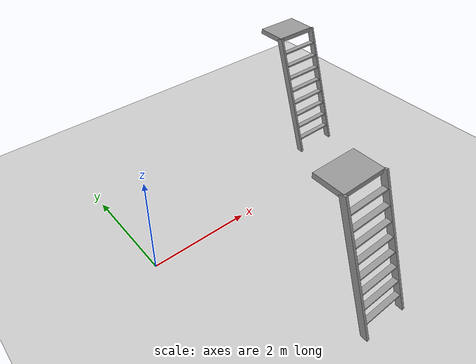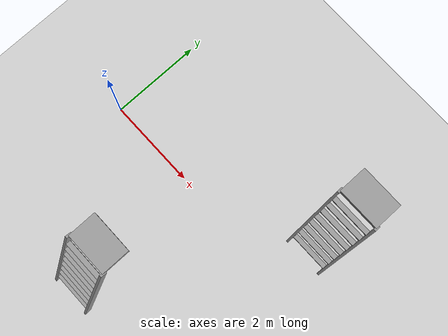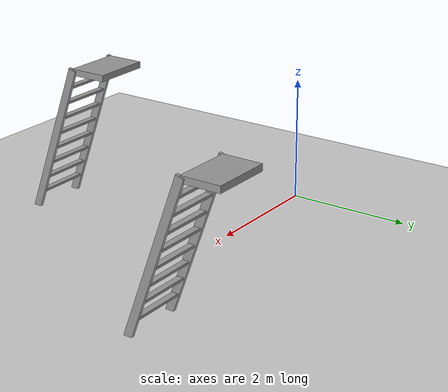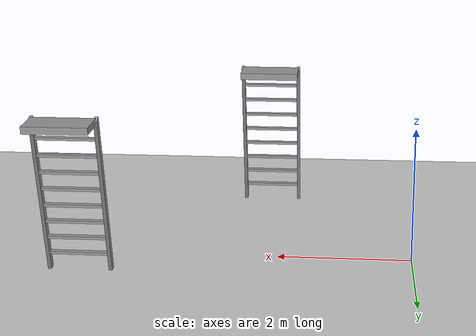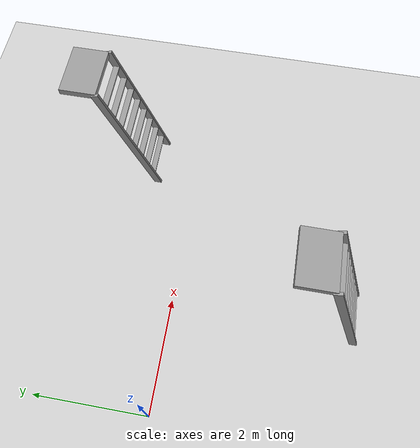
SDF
<sdf version="1.7">
 <world name="default">
  <light name="sun" type="directional">
   <pose>0 0 10 0 -0 0</pose>
   <diffuse>0.8 0.8 0.8 1</diffuse>
   <specular>0.2 0.2 0.2 1</specular>
   <attenuation>
    <range>1000</range>
    <constant>0.9</constant>
    <linear>0.01</linear>
    <quadratic>0.001</quadratic>
   </attenuation>
   <direction>-0.5 0.1 -0.9</direction>
   <spot><inner_angle>0</inner_angle><outer_angle>0</outer_angle><falloff>0</falloff></spot>
  </light>
  <model name="ground_plane">
   <static>1</static>
   <link name="link">
    <collision name="collision">
     <geometry><plane><normal>0 0 1</normal><size>100 100</size></plane></geometry>
     <surface>
      <contact><collide_bitmask>65535</collide_bitmask></contact>
      <friction><ode><mu>100</mu><mu2>50</mu2></ode></friction>
     </surface>
    </collision>
    <visual name="visual">
     <cast_shadows>0</cast_shadows>
     <geometry><plane><normal>0 0 1</normal><size>100 100</size></plane></geometry>
     <material>
      <script><uri>file://media/materials/scripts/gazebo.material</uri><name>Gazebo/Grey</name></script>
     </material>
    </visual>
   </link>
  </model>
  <gravity>0 0 -9.8</gravity>
  <magnetic_field>6e-06 2.3e-05 -4.2e-05</magnetic_field>
  <atmosphere type="adiabatic"/>
  <physics type="ode">
   <max_step_size>0.001</max_step_size>
   <real_time_factor>1</real_time_factor>
   <real_time_update_rate>1000</real_time_update_rate>
  </physics>
  <scene><ambient>0.4 0.4 0.4 1</ambient><background>0.7 0.7 0.7 1</background><shadows>1</shadows></scene>
  <spherical_coordinates>
   <surface_model>EARTH_WGS84</surface_model>
   <latitude_deg>0</latitude_deg>
   <longitude_deg>0</longitude_deg>
   <elevation>0</elevation>
   <heading_deg>0</heading_deg>
  </spherical_coordinates>
  <model name="ladder_70deg_0rails">
   <static>1</static>
   <link name="step0">
    <pose>0 0.097059 0.266667 0 -0 0</pose>
    <inertial>
     <mass>9.75482</mass>
     <inertia>
      <ixx>0.00957124</ixx>
      <iyy>0.65963</iyy>
      <izz>0.666842</izz>
      <ixy>0</ixy>
      <ixz>0</ixz>
      <iyz>0</iyz>
     </inertia>
    </inertial>
    <collision name="collision"><geometry><box><size>0.9 0.1016 0.0381</size></box></geometry></collision>
    <visual name="visual">
     <geometry><box><size>0.9 0.1016 0.0381</size></box></geometry>
     <material>
      <script><uri>file://media/materials/scripts/gazebo.material</uri><name>Gazebo/Grey</name></script>
     </material>
    </visual>
   </link>
   <link name="step1">
    <pose>0 0.194117 0.533333 0 -0 0</pose>
    <inertial>
     <mass>9.75482</mass>
     <inertia>
      <ixx>0.00957124</ixx>
      <iyy>0.65963</iyy>
      <izz>0.666842</izz>
      <ixy>0</ixy>
      <ixz>0</ixz>
      <iyz>0</iyz>
     </inertia>
    </inertial>
    <collision name="collision"><geometry><box><size>0.9 0.1016 0.0381</size></box></geometry></collision>
    <visual name="visual">
     <geometry><box><size>0.9 0.1016 0.0381</size></box></geometry>
     <material>
      <script><uri>file://media/materials/scripts/gazebo.material</uri><name>Gazebo/Grey</name></script>
     </material>
    </visual>
   </link>
   <link name="step2">
    <pose>0 0.291176 0.8 0 -0 0</pose>
    <inertial>
     <mass>9.75482</mass>
     <inertia>
      <ixx>0.00957124</ixx>
      <iyy>0.65963</iyy>
      <izz>0.666842</izz>
      <ixy>0</ixy>
      <ixz>0</ixz>
      <iyz>0</iyz>
     </inertia>
    </inertial>
    <collision name="collision"><geometry><box><size>0.9 0.1016 0.0381</size></box></geometry></collision>
    <visual name="visual">
     <geometry><box><size>0.9 0.1016 0.0381</size></box></geometry>
     <material>
      <script><uri>file://media/materials/scripts/gazebo.material</uri><name>Gazebo/Grey</name></script>
     </material>
    </visual>
   </link>
   <link name="step3">
    <pose>0 0.388235 1.06667 0 -0 0</pose>
    <inertial>
     <mass>9.75482</mass>
     <inertia>
      <ixx>0.00957124</ixx>
      <iyy>0.65963</iyy>
      <izz>0.666842</izz>
      <ixy>0</ixy>
      <ixz>0</ixz>
      <iyz>0</iyz>
     </inertia>
    </inertial>
    <collision name="collision"><geometry><box><size>0.9 0.1016 0.0381</size></box></geometry></collision>
    <visual name="visual">
     <geometry><box><size>0.9 0.1016 0.0381</size></box></geometry>
     <material>
      <script><uri>file://media/materials/scripts/gazebo.material</uri><name>Gazebo/Grey</name></script>
     </material>
    </visual>
   </link>
   <link name="step4">
    <pose>0 0.485294 1.33333 0 -0 0</pose>
    <inertial>
     <mass>9.75482</mass>
     <inertia>
      <ixx>0.00957124</ixx>
      <iyy>0.65963</iyy>
      <izz>0.666842</izz>
      <ixy>0</ixy>
      <ixz>0</ixz>
      <iyz>0</iyz>
     </inertia>
    </inertial>
    <collision name="collision"><geometry><box><size>0.9 0.1016 0.0381</size></box></geometry></collision>
    <visual name="visual">
     <geometry><box><size>0.9 0.1016 0.0381</size></box></geometry>
     <material>
      <script><uri>file://media/materials/scripts/gazebo.material</uri><name>Gazebo/Grey</name></script>
     </material>
    </visual>
   </link>
   <link name="step5">
    <pose>0 0.582352 1.6 0 -0 0</pose>
    <inertial>
     <mass>9.75482</mass>
     <inertia>
      <ixx>0.00957124</ixx>
      <iyy>0.65963</iyy>
      <izz>0.666842</izz>
      <ixy>0</ixy>
      <ixz>0</ixz>
      <iyz>0</iyz>
     </inertia>
    </inertial>
    <collision name="collision"><geometry><box><size>0.9 0.1016 0.0381</size></box></geometry></collision>
    <visual name="visual">
     <geometry><box><size>0.9 0.1016 0.0381</size></box></geometry>
     <material>
      <script><uri>file://media/materials/scripts/gazebo.material</uri><name>Gazebo/Grey</name></script>
     </material>
    </visual>
   </link>
   <link name="step6">
    <pose>0 0.679411 1.86667 0 -0 0</pose>
    <inertial>
     <mass>9.75482</mass>
     <inertia>
      <ixx>0.00957124</ixx>
      <iyy>0.65963</iyy>
      <izz>0.666842</izz>
      <ixy>0</ixy>
      <ixz>0</ixz>
      <iyz>0</iyz>
     </inertia>
    </inertial>
    <collision name="collision"><geometry><box><size>0.9 0.1016 0.0381</size></box></geometry></collision>
    <visual name="visual">
     <geometry><box><size>0.9 0.1016 0.0381</size></box></geometry>
     <material>
      <script><uri>file://media/materials/scripts/gazebo.material</uri><name>Gazebo/Grey</name></script>
     </material>
    </visual>
   </link>
   <link name="step7">
    <pose>0 0.77647 2.13333 0 -0 0</pose>
    <inertial>
     <mass>9.75482</mass>
     <inertia>
      <ixx>0.00957124</ixx>
      <iyy>0.65963</iyy>
      <izz>0.666842</izz>
      <ixy>0</ixy>
      <ixz>0</ixz>
      <iyz>0</iyz>
     </inertia>
    </inertial>
    <collision name="collision"><geometry><box><size>0.9 0.1016 0.0381</size></box></geometry></collision>
    <visual name="visual">
     <geometry><box><size>0.9 0.1016 0.0381</size></box></geometry>
     <material>
      <script><uri>file://media/materials/scripts/gazebo.material</uri><name>Gazebo/Grey</name></script>
     </material>
    </visual>
   </link>
   <link name="landing">
    <pose>0 1.17353 2.4 0 -0 0</pose>
    <inertial>
     <mass>57.6072</mass>
     <inertia><ixx>1.73518</ixx><iyy>3.89545</iyy><izz>5.6167</izz><ixy>0</ixy><ixz>0</ixz><iyz>0</iyz></inertia>
    </inertial>
    <collision name="collision"><geometry><box><size>0.9 0.6 0.1016</size></box></geometry></collision>
    <visual name="visual">
     <geometry><box><size>0.9 0.6 0.1016</size></box></geometry>
     <material>
      <script><uri>file://media/materials/scripts/gazebo.material</uri><name>Gazebo/Grey</name></script>
     </material>
    </visual>
   </link>
   <link name="left_side_wall">
    <pose>-0.45 0.436764 1.2 1.22173 -0 0</pose>
    <collision name="collision"><geometry><box><size>0.0508 2.63403 0.13</size></box></geometry></collision>
    <visual name="visual">
     <geometry><box><size>0.0508 2.63403 0.13</size></box></geometry>
     <material>
      <script><uri>file://media/materials/scripts/gazebo.material</uri><name>Gazebo/Grey</name></script>
     </material>
    </visual>
   </link>
   <link name="right_side_wall">
    <pose>0.45 0.436764 1.2 1.22173 -0 0</pose>
    <collision name="collision"><geometry><box><size>0.0508 2.63403 0.13</size></box></geometry></collision>
    <visual name="visual">
     <geometry><box><size>0.0508 2.63403 0.13</size></box></geometry>
     <material>
      <script><uri>file://media/materials/scripts/gazebo.material</uri><name>Gazebo/Grey</name></script>
     </material>
    </visual>
   </link>
   <pose>2.25799 -3.2485 0 0 -0 0</pose>
  </model>
  <model name="ladder_70deg_0rails_0">
   <static>1</static>
   <link name="step0">
    <pose>0 0.097059 0.266667 0 -0 0</pose>
    <inertial>
     <mass>9.75482</mass>
     <inertia>
      <ixx>0.00957124</ixx>
      <iyy>0.65963</iyy>
      <izz>0.666842</izz>
      <ixy>0</ixy>
      <ixz>0</ixz>
      <iyz>0</iyz>
     </inertia>
    </inertial>
    <collision name="collision"><geometry><box><size>0.9 0.1016 0.0381</size></box></geometry></collision>
    <visual name="visual">
     <geometry><box><size>0.9 0.1016 0.0381</size></box></geometry>
     <material>
      <script><uri>file://media/materials/scripts/gazebo.material</uri><name>Gazebo/Grey</name></script>
     </material>
    </visual>
   </link>
   <link name="step1">
    <pose>0 0.194117 0.533333 0 -0 0</pose>
    <inertial>
     <mass>9.75482</mass>
     <inertia>
      <ixx>0.00957124</ixx>
      <iyy>0.65963</iyy>
      <izz>0.666842</izz>
      <ixy>0</ixy>
      <ixz>0</ixz>
      <iyz>0</iyz>
     </inertia>
    </inertial>
    <collision name="collision"><geometry><box><size>0.9 0.1016 0.0381</size></box></geometry></collision>
    <visual name="visual">
     <geometry><box><size>0.9 0.1016 0.0381</size></box></geometry>
     <material>
      <script><uri>file://media/materials/scripts/gazebo.material</uri><name>Gazebo/Grey</name></script>
     </material>
    </visual>
   </link>
   <link name="step2">
    <pose>0 0.291176 0.8 0 -0 0</pose>
    <inertial>
     <mass>9.75482</mass>
     <inertia>
      <ixx>0.00957124</ixx>
      <iyy>0.65963</iyy>
      <izz>0.666842</izz>
      <ixy>0</ixy>
      <ixz>0</ixz>
      <iyz>0</iyz>
     </inertia>
    </inertial>
    <collision name="collision"><geometry><box><size>0.9 0.1016 0.0381</size></box></geometry></collision>
    <visual name="visual">
     <geometry><box><size>0.9 0.1016 0.0381</size></box></geometry>
     <material>
      <script><uri>file://media/materials/scripts/gazebo.material</uri><name>Gazebo/Grey</name></script>
     </material>
    </visual>
   </link>
   <link name="step3">
    <pose>0 0.388235 1.06667 0 -0 0</pose>
    <inertial>
     <mass>9.75482</mass>
     <inertia>
      <ixx>0.00957124</ixx>
      <iyy>0.65963</iyy>
      <izz>0.666842</izz>
      <ixy>0</ixy>
      <ixz>0</ixz>
      <iyz>0</iyz>
     </inertia>
    </inertial>
    <collision name="collision"><geometry><box><size>0.9 0.1016 0.0381</size></box></geometry></collision>
    <visual name="visual">
     <geometry><box><size>0.9 0.1016 0.0381</size></box></geometry>
     <material>
      <script><uri>file://media/materials/scripts/gazebo.material</uri><name>Gazebo/Grey</name></script>
     </material>
    </visual>
   </link>
   <link name="step4">
    <pose>0 0.485294 1.33333 0 -0 0</pose>
    <inertial>
     <mass>9.75482</mass>
     <inertia>
      <ixx>0.00957124</ixx>
      <iyy>0.65963</iyy>
      <izz>0.666842</izz>
      <ixy>0</ixy>
      <ixz>0</ixz>
      <iyz>0</iyz>
     </inertia>
    </inertial>
    <collision name="collision"><geometry><box><size>0.9 0.1016 0.0381</size></box></geometry></collision>
    <visual name="visual">
     <geometry><box><size>0.9 0.1016 0.0381</size></box></geometry>
     <material>
      <script><uri>file://media/materials/scripts/gazebo.material</uri><name>Gazebo/Grey</name></script>
     </material>
    </visual>
   </link>
   <link name="step5">
    <pose>0 0.582352 1.6 0 -0 0</pose>
    <inertial>
     <mass>9.75482</mass>
     <inertia>
      <ixx>0.00957124</ixx>
      <iyy>0.65963</iyy>
      <izz>0.666842</izz>
      <ixy>0</ixy>
      <ixz>0</ixz>
      <iyz>0</iyz>
     </inertia>
    </inertial>
    <collision name="collision"><geometry><box><size>0.9 0.1016 0.0381</size></box></geometry></collision>
    <visual name="visual">
     <geometry><box><size>0.9 0.1016 0.0381</size></box></geometry>
     <material>
      <script><uri>file://media/materials/scripts/gazebo.material</uri><name>Gazebo/Grey</name></script>
     </material>
    </visual>
   </link>
   <link name="step6">
    <pose>0 0.679411 1.86667 0 -0 0</pose>
    <inertial>
     <mass>9.75482</mass>
     <inertia>
      <ixx>0.00957124</ixx>
      <iyy>0.65963</iyy>
      <izz>0.666842</izz>
      <ixy>0</ixy>
      <ixz>0</ixz>
      <iyz>0</iyz>
     </inertia>
    </inertial>
    <collision name="collision"><geometry><box><size>0.9 0.1016 0.0381</size></box></geometry></collision>
    <visual name="visual">
     <geometry><box><size>0.9 0.1016 0.0381</size></box></geometry>
     <material>
      <script><uri>file://media/materials/scripts/gazebo.material</uri><name>Gazebo/Grey</name></script>
     </material>
    </visual>
   </link>
   <link name="step7">
    <pose>0 0.77647 2.13333 0 -0 0</pose>
    <inertial>
     <mass>9.75482</mass>
     <inertia>
      <ixx>0.00957124</ixx>
      <iyy>0.65963</iyy>
      <izz>0.666842</izz>
      <ixy>0</ixy>
      <ixz>0</ixz>
      <iyz>0</iyz>
     </inertia>
    </inertial>
    <collision name="collision"><geometry><box><size>0.9 0.1016 0.0381</size></box></geometry></collision>
    <visual name="visual">
     <geometry><box><size>0.9 0.1016 0.0381</size></box></geometry>
     <material>
      <script><uri>file://media/materials/scripts/gazebo.material</uri><name>Gazebo/Grey</name></script>
     </material>
    </visual>
   </link>
   <link name="landing">
    <pose>0 1.17353 2.4 0 -0 0</pose>
    <inertial>
     <mass>57.6072</mass>
     <inertia><ixx>1.73518</ixx><iyy>3.89545</iyy><izz>5.6167</izz><ixy>0</ixy><ixz>0</ixz><iyz>0</iyz></inertia>
    </inertial>
    <collision name="collision"><geometry><box><size>0.9 0.6 0.1016</size></box></geometry></collision>
    <visual name="visual">
     <geometry><box><size>0.9 0.6 0.1016</size></box></geometry>
     <material>
      <script><uri>file://media/materials/scripts/gazebo.material</uri><name>Gazebo/Grey</name></script>
     </material>
    </visual>
   </link>
   <link name="left_side_wall">
    <pose>-0.45 0.436764 1.2 1.22173 -0 0</pose>
    <collision name="collision"><geometry><box><size>0.0508 2.63403 0.13</size></box></geometry></collision>
    <visual name="visual">
     <geometry><box><size>0.0508 2.63403 0.13</size></box></geometry>
     <material>
      <script><uri>file://media/materials/scripts/gazebo.material</uri><name>Gazebo/Grey</name></script>
     </material>
    </visual>
   </link>
   <link name="right_side_wall">
    <pose>0.45 0.436764 1.2 1.22173 -0 0</pose>
    <collision name="collision"><geometry><box><size>0.0508 2.63403 0.13</size></box></geometry></collision>
    <visual name="visual">
     <geometry><box><size>0.0508 2.63403 0.13</size></box></geometry>
     <material>
      <script><uri>file://media/materials/scripts/gazebo.material</uri><name>Gazebo/Grey</name></script>
     </material>
    </visual>
   </link>
   <pose>4.84338 0.749646 0 0 -0 0</pose>
  </model>
 </world>
</sdf>
